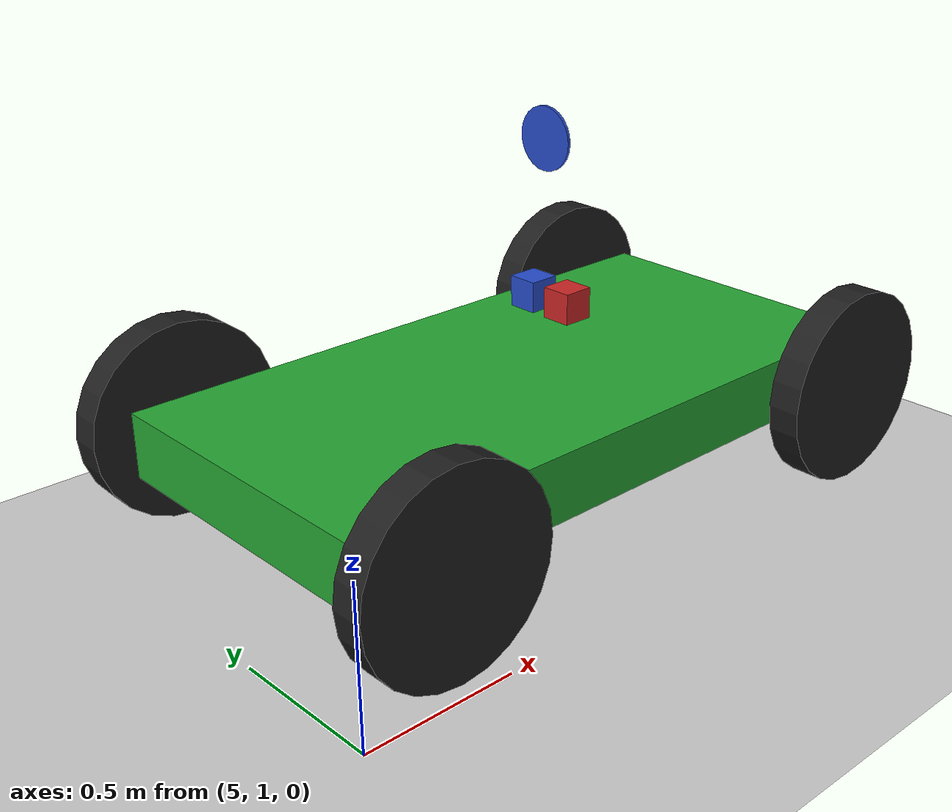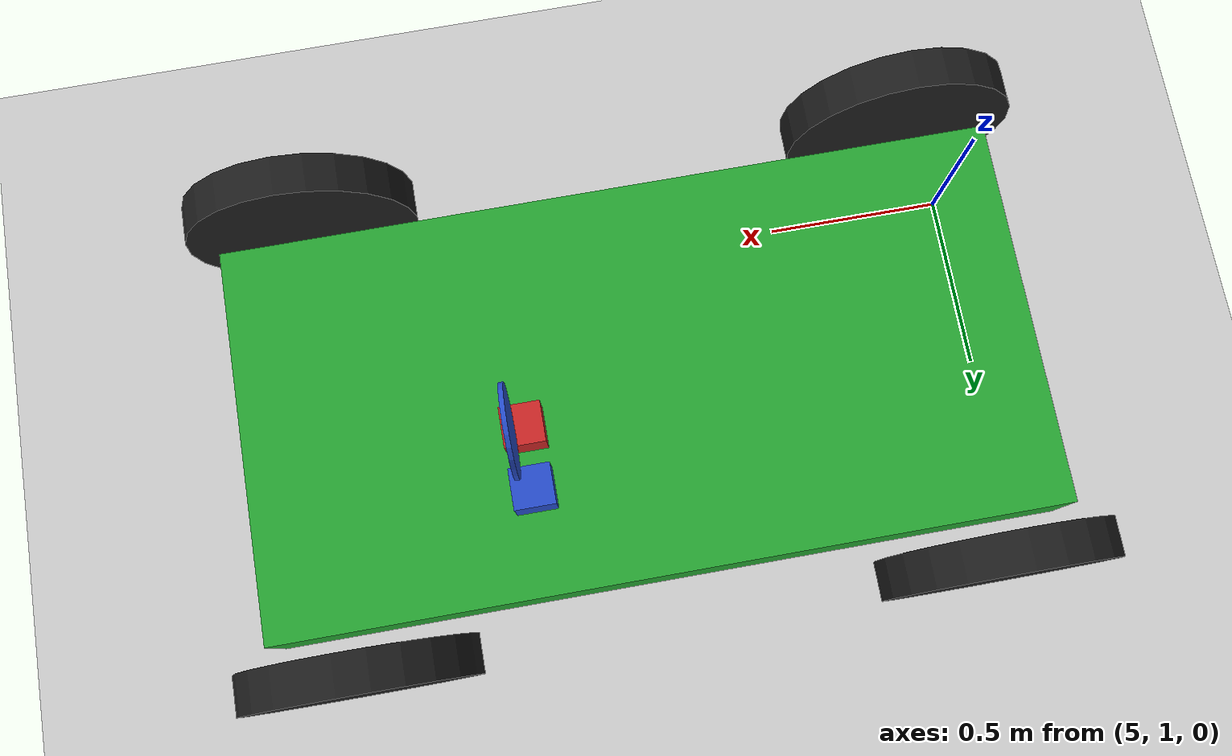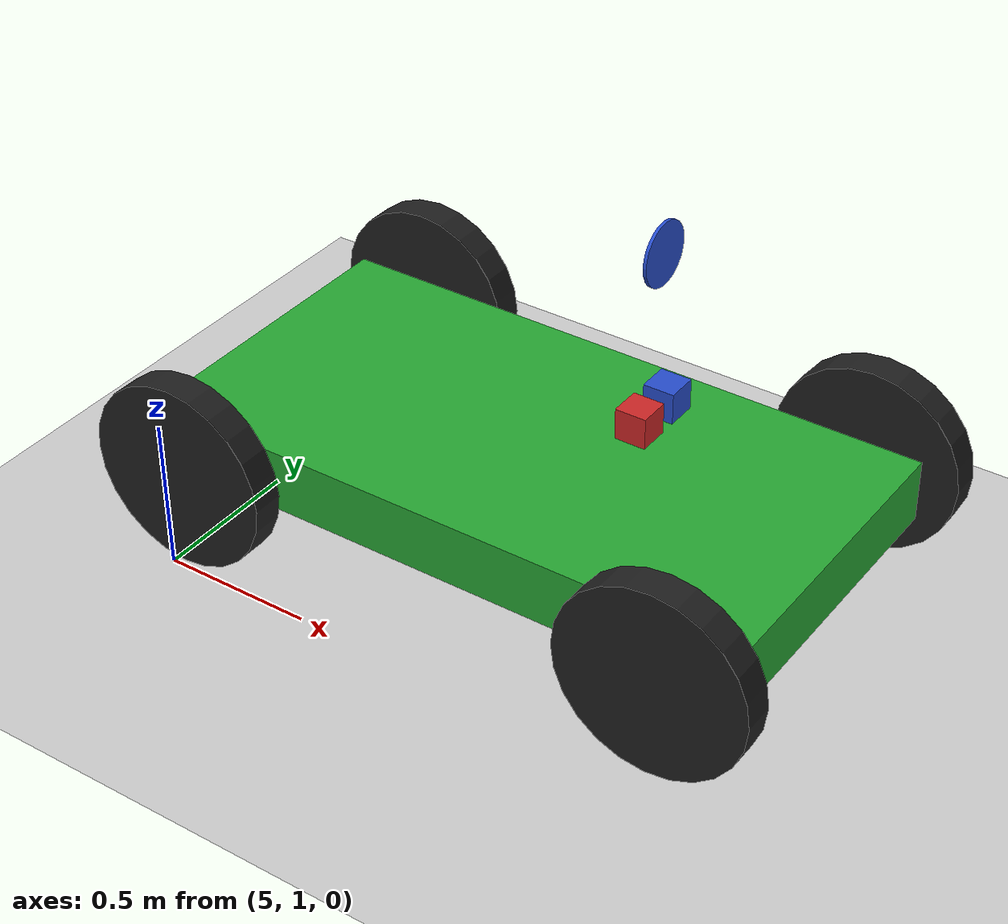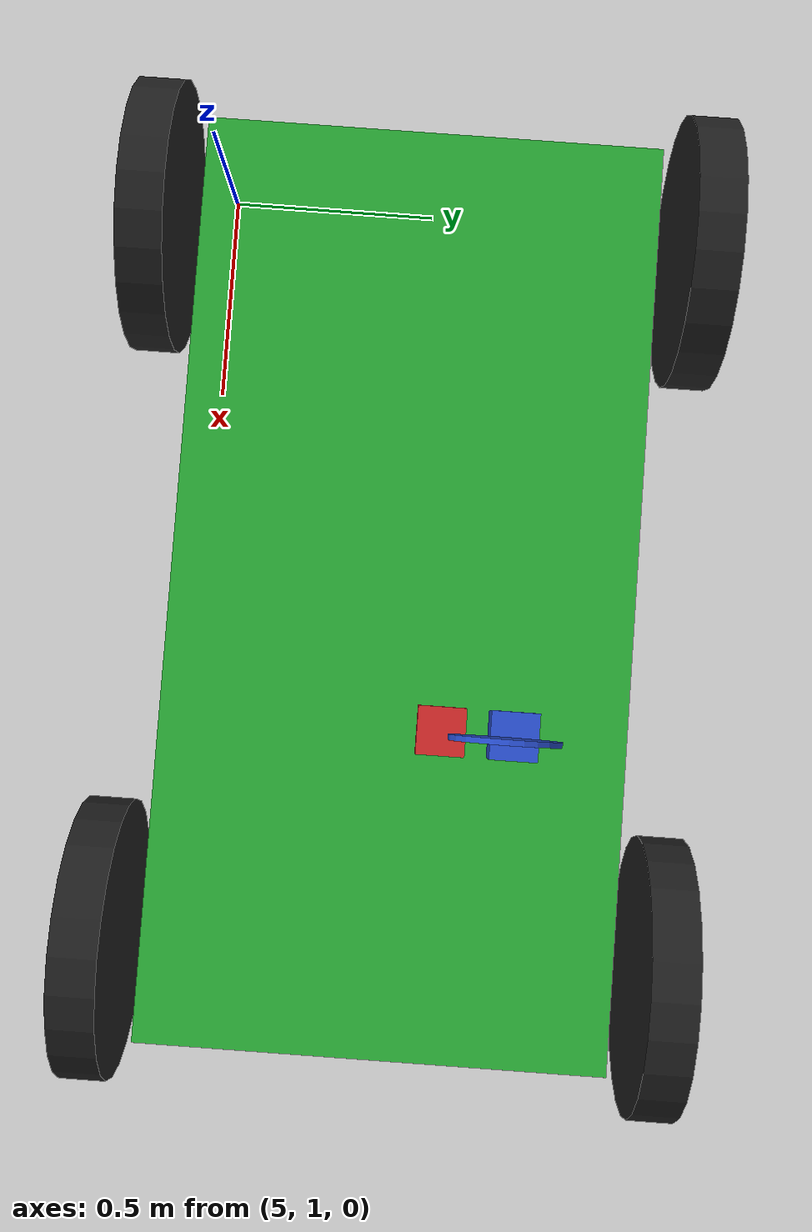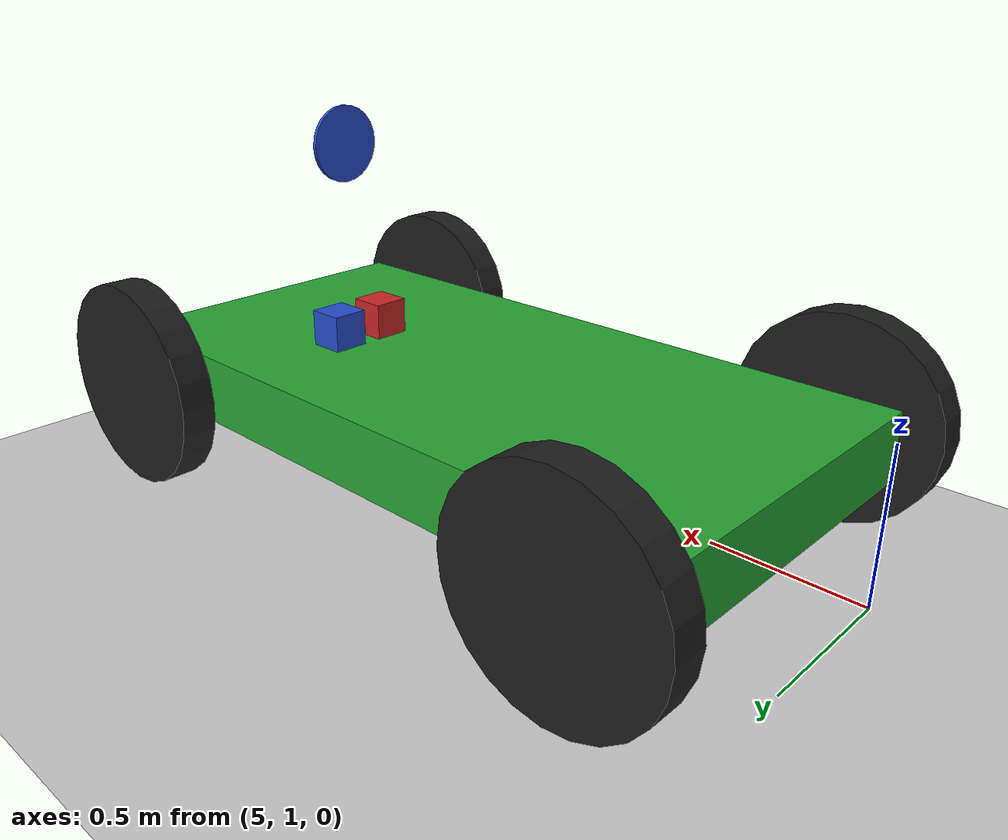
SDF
<sdf version="1.6">
 <world name="default">
  <include><uri>model://sun</uri></include>
  <model name="ground_plane">
   <static>true</static>
   <link name="link">
    <collision name="collision">
     <geometry><plane><normal>0 0 1</normal><size>5000 5000</size></plane></geometry>
     <surface><friction><ode><mu>1</mu><mu2>1</mu2></ode></friction></surface>
    </collision>
    <visual name="runway">
     <pose>700 0 0.005 0 0 0</pose>
     <cast_shadows>false</cast_shadows>
     <geometry><plane><normal>0 0 1</normal><size>1829 45</size></plane></geometry>
     <material>
      <script>
       <uri>file:///media/student/code2/px4-1.5/Firmware/Tools/sitl_gazebo/worlds/wang.material</uri>
       <name>Gazebo/Runway</name>
      </script>
     </material>
    </visual>
    <visual name="grass">
     <pose>0 0 -0.1 0 0 0</pose>
     <cast_shadows>false</cast_shadows>
     <geometry><plane><normal>0 0 1</normal><size>5000 5000</size></plane></geometry>
     <material>
      <script>
       <uri>file:///media/student/code2/px4-1.5/Firmware/Tools/sitl_gazebo/worlds/wang.material</uri>
       <name>Gazebo/VSUfarm</name>
      </script>
     </material>
    </visual>
   </link>
  </model>
  <include><uri>model://utility_cart</uri><pose>6 1.5 0.19 0 0 0</pose></include>
 </world>
</sdf>

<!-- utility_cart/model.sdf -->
<sdf version="1.5">
  <model name="utility_cart">
    <link name="chassis">
      <pose>0 0 0.3 0 0 0</pose>
      <collision name="collision">
        <geometry>
          <box>
            <size>2.0 1.0 0.2</size>
          </box>
        </geometry>
      </collision>
      <visual name="visual">
        <geometry>
          <box>
            <size>2.0 1.0 0.2</size>
          </box>
        </geometry>
        <material>
          <script>
            <uri>file://media/materials/scripts/gazebo.material</uri>
            <name>Gazebo/Green</name>
          </script>
        </material>
      </visual>
    </link>
    <link name="front_left_wheel">
      <pose>0.8 0.6 0.3 0 1.5707 1.5707</pose>
      <collision name="collision">
        <geometry>
          <cylinder>
            <radius>0.3</radius>
            <length>0.1</length>
          </cylinder>
        </geometry>
      </collision>
      <visual name="visual">
        <geometry>
          <cylinder>
            <radius>0.3</radius>
            <length>0.1</length>
          </cylinder>
        </geometry>
        <material>
          <script>
            <uri>file://media/materials/scripts/gazebo.material</uri>
            <name>Gazebo/Black</name>
          </script>
        </material>
      </visual>
    </link>
    <link name="front_right_wheel">
      <pose>0.8 -0.6 0.3 0 1.5707 1.5707</pose>
      <collision name="collision">
        <geometry>
          <cylinder>
            <radius>0.3</radius>
            <length>0.1</length>
          </cylinder>
        </geometry>
      </collision>
      <visual name="visual">
        <geometry>
          <cylinder>
            <radius>0.3</radius>
            <length>0.1</length>
          </cylinder>
        </geometry>
        <material>
          <script>
            <uri>file://media/materials/scripts/gazebo.material</uri>
            <name>Gazebo/Black</name>
          </script>
        </material>
      </visual>
    </link>
    <link name="back_right_wheel">
      <pose>-0.8 -0.6 0.3 0 1.5707 1.5707</pose>
      <collision name="collision">
        <geometry>
          <cylinder>
            <radius>0.3</radius>
            <length>0.1</length>
          </cylinder>
        </geometry>
      </collision>
      <visual name="visual">
        <geometry>
          <cylinder>
            <radius>0.3</radius>
            <length>0.1</length>
          </cylinder>
        </geometry>
        <material>
          <script>
            <uri>file://media/materials/scripts/gazebo.material</uri>
            <name>Gazebo/Black</name>
          </script>
        </material>
      </visual>
    </link>
    <link name="back_left_wheel">
      <pose>-0.8 0.6 0.3 0 1.5707 1.5707</pose>
      <collision name="collision">
        <geometry>
          <cylinder>
            <radius>0.3</radius>
            <length>0.1</length>
          </cylinder>
        </geometry>
      </collision>
      <visual name="visual">
        <geometry>
          <cylinder>
            <radius>0.3</radius>
            <length>0.1</length>
          </cylinder>
        </geometry>
        <material>
          <script>
            <uri>file://media/materials/scripts/gazebo.material</uri>
            <name>Gazebo/Black</name>
          </script>
        </material>
      </visual>
    </link>
    <link name="gas_pedal">
      <pose>0.3 0.1 0.5 0 0 0</pose>
      <collision name="collision">
        <geometry>
          <box>
            <size>0.1 0.1 0.1</size>
          </box>
        </geometry>
      </collision>
      <visual name="visual">
        <geometry>
          <box>
            <size>0.1 0.1 0.1</size>
          </box>
        </geometry>
        <material>
          <script>
            <uri>file://media/materials/scripts/gazebo.material</uri>
            <name>Gazebo/Red</name>
          </script>
        </material>
      </visual>
    </link>
    <link name="brake_pedal">
      <pose>0.3 0.25 0.5 0 0 0</pose>
      <collision name="collision">
        <geometry>
          <box>
            <size>0.1 0.1 0.1</size>
          </box>
        </geometry>
      </collision>
      <visual name="visual">
        <geometry>
          <box>
            <size>0.1 0.1 0.1</size>
          </box>
        </geometry>
        <material>
          <script>
            <uri>file://media/materials/scripts/gazebo.material</uri>
            <name>Gazebo/Blue</name>
          </script>
        </material>
      </visual>
    </link>
    <link name="steering_wheel">
      <pose>0.3 0.2 1.0 0 1.5707 0</pose>
      <collision name="collision">
        <geometry>
          <cylinder>
            <radius>0.1</radius>
            <length>0.01</length>
          </cylinder>
        </geometry>
      </collision>
      <visual name="visual">
        <geometry>
          <cylinder>
            <radius>0.1</radius>
            <length>0.01</length>
          </cylinder>
        </geometry>
        <material>
          <script>
            <uri>file://media/materials/scripts/gazebo.material</uri>
            <name>Gazebo/Blue</name>
          </script>
        </material>
      </visual>
    </link>
    <joint type="prismatic" name="gas_joint">
      <parent>chassis</parent>
      <child>gas_pedal</child>
      <axis>
        <xyz>1 0 0</xyz>
        <limit>
          <lower>0</lower>
          <upper>0.2</upper>
        </limit>
        <use_parent_model_frame>true</use_parent_model_frame>
      </axis>
    </joint>
    <joint type="prismatic" name="brake_joint">
      <parent>chassis</parent>
      <child>brake_pedal</child>
      <axis>
        <xyz>1 0 0</xyz>
        <limit>
          <lower>0</lower>
          <upper>0.2</upper>
        </limit>
        <use_parent_model_frame>true</use_parent_model_frame>
      </axis>
    </joint>
    <joint type="revolute" name="steering_joint">
      <parent>chassis</parent>
      <child>steering_wheel</child>
      <axis>
        <xyz>1 0 0</xyz>
        <limit>
          <lower>-7.853</lower>
          <upper>7.853</upper>
        </limit>
        <use_parent_model_frame>true</use_parent_model_frame>
      </axis>
    </joint>
    <joint type="revolute2" name="front_left_joint">
      <parent>chassis</parent>
      <child>front_left_wheel</child>
      <axis>
        <xyz>0 0 1</xyz>
        <limit>
          <lower>0</lower>
          <upper>0</upper>
        </limit>
        <use_parent_model_frame>true</use_parent_model_frame>
      </axis>
      <axis2>
        <xyz>0 1 0</xyz>
        <use_parent_model_frame>true</use_parent_model_frame>
      </axis2>
      <physics>
        <ode>
          <limit>
            <cfm>0.0</cfm>
            <erp>0.9</erp>
          </limit>
        </ode>
      </physics>
    </joint>
    <joint type="revolute2" name="front_right_joint">
      <parent>chassis</parent>
      <child>front_right_wheel</child>
      <axis>
        <xyz>0 0 1</xyz>
        <limit>
          <lower>0</lower>
          <upper>0</upper>
        </limit>
        <use_parent_model_frame>true</use_parent_model_frame>
      </axis>
      <axis2>
        <xyz>0 1 0</xyz>
        <use_parent_model_frame>true</use_parent_model_frame>
      </axis2>
      <physics>
        <ode>
          <limit>
            <cfm>0.0</cfm>
            <erp>0.9</erp>
          </limit>
        </ode>
      </physics>
    </joint>
    <joint type="revolute2" name="back_right_joint">
      <parent>chassis</parent>
      <child>back_right_wheel</child>
      <axis>
        <xyz>0 0 1</xyz>
        <limit>
          <lower>0</lower>
          <upper>0</upper>
        </limit>
        <use_parent_model_frame>true</use_parent_model_frame>
      </axis>
      <axis2>
        <xyz>0 1 0</xyz>
        <use_parent_model_frame>true</use_parent_model_frame>
      </axis2>
      <physics>
        <ode>
          <limit>
            <cfm>0.0</cfm>
            <erp>0.9</erp>
          </limit>
        </ode>
      </physics>
    </joint>
    <joint type="revolute2" name="back_left_joint">
      <parent>chassis</parent>
      <child>back_left_wheel</child>
      <axis>
        <xyz>0 0 1</xyz>
        <limit>
          <lower>0</lower>
          <upper>0</upper>
        </limit>
        <use_parent_model_frame>true</use_parent_model_frame>
      </axis>
      <axis2>
        <xyz>0 1 0</xyz>
        <use_parent_model_frame>true</use_parent_model_frame>
      </axis2>
      <physics>
        <ode>
          <limit>
            <cfm>0.0</cfm>
            <erp>0.9</erp>
          </limit>
        </ode>
      </physics>
    </joint>
    <plugin filename="libVehiclePlugin.so" name="vehicle">
      <!-- Joints for each wheel -->
      <front_left>front_left_joint</front_left>
      <front_right>front_right_joint</front_right>
      <back_left>back_left_joint</back_left>
      <back_right>back_right_joint</back_right>
      <!-- Joint which controls the gas -->
      <gas>gas_joint</gas>
      <!-- Joint which controls the gas -->
      <brake>brake_joint</brake>
      <!-- Joint which controls the steering -->
      <steering>steering_joint</steering>
      <!-- Power is multiplied by "gas" to determine force applied to wheels -->
      <front_power>10</front_power>
      <rear_power>10</rear_power>
      <!-- The angle range the front tires can turn for steering, in radians -->
      <tire_angle_range>0.5</tire_angle_range>
      <!-- Maximum speed for the car in meters/second -->
      <max_speed>10</max_speed>
      <!-- Factor for the down-force applied as the car travels faster -->
      <!-- A larger number increases the down force -->
      <aero_load>0.1</aero_load>
    </plugin>
  </model>
</sdf>
